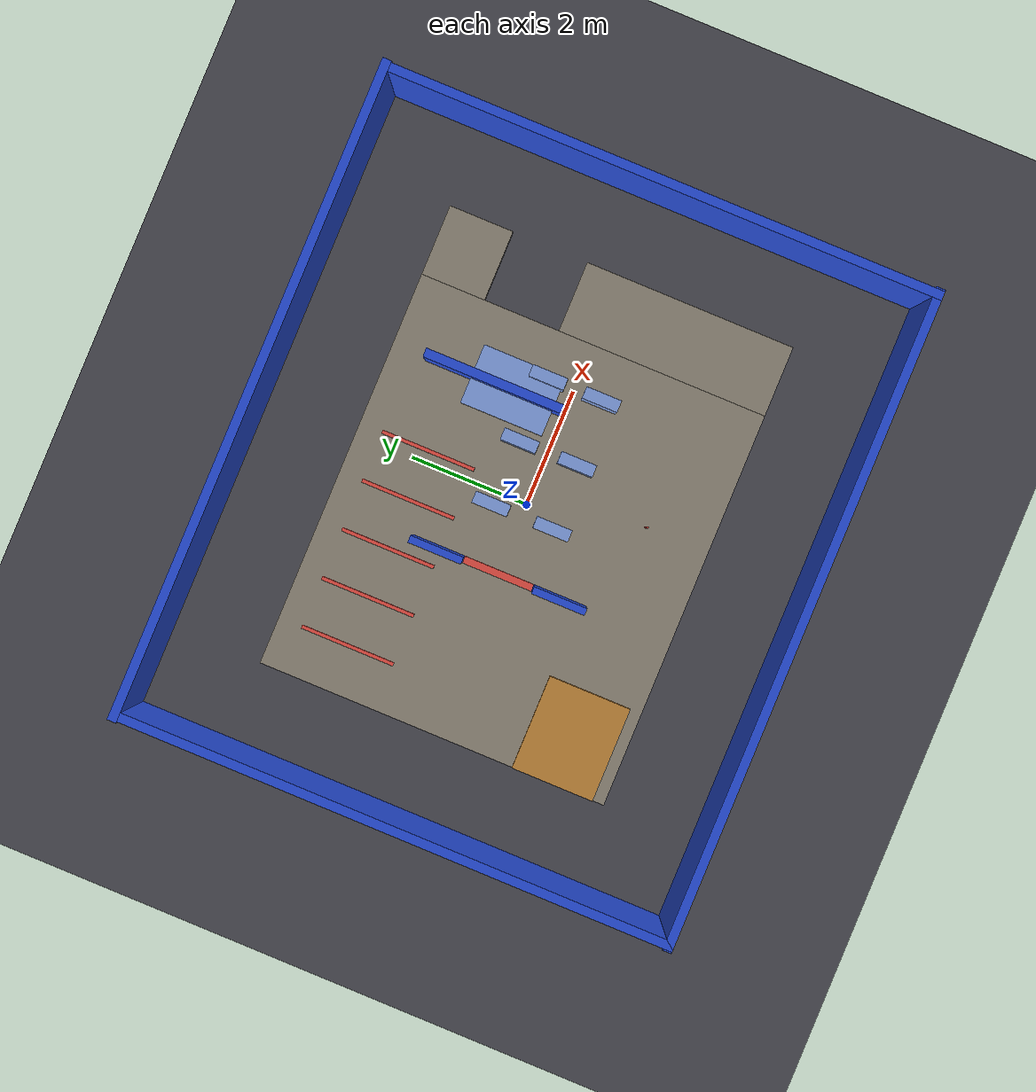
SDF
<?xml version="1.0"?>
<sdf version="1.9">
  <world name="proving_ground">
    <physics name="1ms" type="ignored">
      <max_step_size>0.001</max_step_size>
      <real_time_factor>1.0</real_time_factor>
    </physics>
    <plugin filename="gz-sim-physics-system" name="gz::sim::systems::Physics"/>
    <plugin filename="gz-sim-user-commands-system" name="gz::sim::systems::UserCommands"/>
    <plugin filename="gz-sim-scene-broadcaster-system" name="gz::sim::systems::SceneBroadcaster"/>
    <plugin filename="gz-sim-sensors-system" name="gz::sim::systems::Sensors">
      <render_engine>ogre2</render_engine>
    </plugin>
    <plugin filename="gz-sim-imu-system" name="gz::sim::systems::Imu"/>

    <light type="directional" name="sun">
      <cast_shadows>true</cast_shadows>
      <pose>0 0 10 0 0 0</pose>
      <diffuse>0.85 0.85 0.85 1</diffuse>
      <specular>0.2 0.2 0.2 1</specular>
      <direction>-0.5 0.1 -0.9</direction>
    </light>

    <model name="ground_plane">
      <static>true</static>
      <link name="link">
        <collision name="collision">
          <geometry><plane><normal>0 0 1</normal><size>100 100</size></plane></geometry>
        </collision>
        <visual name="visual">
          <geometry><plane><normal>0 0 1</normal><size>100 100</size></plane></geometry>
          <material><ambient>0.18 0.18 0.20 1</ambient><diffuse>0.28 0.28 0.31 1</diffuse></material>
        </visual>
      </link>
    </model>

    <model name="deck_main">
      <static>true</static><pose>-0.6000 0.0000 0.0600 0.000000 0.000000 0.000000</pose>
      <link name="link">
        <collision name="collision">
          <geometry><box><size>6.8000 6.0000 0.1200</size></box></geometry>
        </collision>
        <visual name="visual">
          <geometry><box><size>6.8000 6.0000 0.1200</size></box></geometry>
          <material><ambient>0.32 0.30 0.26 1</ambient><diffuse>0.55 0.52 0.46 1</diffuse>
            <specular>0.2 0.2 0.25 1</specular></material>
        </visual>
      </link>
    </model>
    <model name="deck_east_south">
      <static>true</static><pose>3.4000 -1.2000 0.0600 0.000000 0.000000 0.000000</pose>
      <link name="link">
        <collision name="collision">
          <geometry><box><size>1.2000 3.6000 0.1200</size></box></geometry>
        </collision>
        <visual name="visual">
          <geometry><box><size>1.2000 3.6000 0.1200</size></box></geometry>
          <material><ambient>0.32 0.30 0.26 1</ambient><diffuse>0.55 0.52 0.46 1</diffuse>
            <specular>0.2 0.2 0.25 1</specular></material>
        </visual>
      </link>
    </model>
    <model name="deck_east_north">
      <static>true</static><pose>3.4000 2.4500 0.0600 0.000000 0.000000 0.000000</pose>
      <link name="link">
        <collision name="collision">
          <geometry><box><size>1.2000 1.1000 0.1200</size></box></geometry>
        </collision>
        <visual name="visual">
          <geometry><box><size>1.2000 1.1000 0.1200</size></box></geometry>
          <material><ambient>0.32 0.30 0.26 1</ambient><diffuse>0.55 0.52 0.46 1</diffuse>
            <specular>0.2 0.2 0.25 1</specular></material>
        </visual>
      </link>
    </model>
    <model name="ledge_lane_wall">
      <static>true</static><pose>1.6000 1.2000 0.4200 0.000000 0.000000 0.000000</pose>
      <link name="link">
        <collision name="collision">
          <geometry><box><size>0.1500 2.4000 0.6000</size></box></geometry>
        </collision>
        <visual name="visual">
          <geometry><box><size>0.1500 2.4000 0.6000</size></box></geometry>
          <material><ambient>0.10 0.20 0.65 1</ambient><diffuse>0.15 0.30 0.85 1</diffuse>
            <specular>0.2 0.2 0.25 1</specular></material>
        </visual>
      </link>
    </model>
    <model name="bar_15mm">
      <static>true</static><pose>-3.2000 1.8000 0.1275 0.000000 0.000000 0.000000</pose>
      <link name="link">
        <collision name="collision">
          <geometry><box><size>0.0600 1.6000 0.0150</size></box></geometry>
        </collision>
        <visual name="visual">
          <geometry><box><size>0.0600 1.6000 0.0150</size></box></geometry>
          <material><ambient>0.62 0.18 0.16 1</ambient><diffuse>0.90 0.30 0.26 1</diffuse>
            <specular>0.2 0.2 0.25 1</specular></material>
        </visual>
      </link>
    </model>
    <model name="bar_30mm">
      <static>true</static><pose>-2.3500 1.8000 0.1350 0.000000 0.000000 0.000000</pose>
      <link name="link">
        <collision name="collision">
          <geometry><box><size>0.0600 1.6000 0.0300</size></box></geometry>
        </collision>
        <visual name="visual">
          <geometry><box><size>0.0600 1.6000 0.0300</size></box></geometry>
          <material><ambient>0.62 0.18 0.16 1</ambient><diffuse>0.90 0.30 0.26 1</diffuse>
            <specular>0.2 0.2 0.25 1</specular></material>
        </visual>
      </link>
    </model>
    <model name="bar_45mm">
      <static>true</static><pose>-1.5000 1.8000 0.1425 0.000000 0.000000 0.000000</pose>
      <link name="link">
        <collision name="collision">
          <geometry><box><size>0.0600 1.6000 0.0450</size></box></geometry>
        </collision>
        <visual name="visual">
          <geometry><box><size>0.0600 1.6000 0.0450</size></box></geometry>
          <material><ambient>0.62 0.18 0.16 1</ambient><diffuse>0.90 0.30 0.26 1</diffuse>
            <specular>0.2 0.2 0.25 1</specular></material>
        </visual>
      </link>
    </model>
    <model name="bar_60mm">
      <static>true</static><pose>-0.6500 1.8000 0.1500 0.000000 0.000000 0.000000</pose>
      <link name="link">
        <collision name="collision">
          <geometry><box><size>0.0600 1.6000 0.0600</size></box></geometry>
        </collision>
        <visual name="visual">
          <geometry><box><size>0.0600 1.6000 0.0600</size></box></geometry>
          <material><ambient>0.62 0.18 0.16 1</ambient><diffuse>0.90 0.30 0.26 1</diffuse>
            <specular>0.2 0.2 0.25 1</specular></material>
        </visual>
      </link>
    </model>
    <model name="bar_90mm">
      <static>true</static><pose>0.2000 1.8000 0.1650 0.000000 0.000000 0.000000</pose>
      <link name="link">
        <collision name="collision">
          <geometry><box><size>0.0600 1.6000 0.0900</size></box></geometry>
        </collision>
        <visual name="visual">
          <geometry><box><size>0.0600 1.6000 0.0900</size></box></geometry>
          <material><ambient>0.62 0.18 0.16 1</ambient><diffuse>0.90 0.30 0.26 1</diffuse>
            <specular>0.2 0.2 0.25 1</specular></material>
        </visual>
      </link>
    </model>
    <model name="doorway_left">
      <static>true</static><pose>-1.2000 1.0500 0.4200 0.000000 0.000000 0.000000</pose>
      <link name="link">
        <collision name="collision">
          <geometry><box><size>0.1200 0.9000 0.6000</size></box></geometry>
        </collision>
        <visual name="visual">
          <geometry><box><size>0.1200 0.9000 0.6000</size></box></geometry>
          <material><ambient>0.10 0.20 0.65 1</ambient><diffuse>0.15 0.30 0.85 1</diffuse>
            <specular>0.2 0.2 0.25 1</specular></material>
        </visual>
      </link>
    </model>
    <model name="doorway_right">
      <static>true</static><pose>-1.2000 -1.0500 0.4200 0.000000 0.000000 0.000000</pose>
      <link name="link">
        <collision name="collision">
          <geometry><box><size>0.1200 0.9000 0.6000</size></box></geometry>
        </collision>
        <visual name="visual">
          <geometry><box><size>0.1200 0.9000 0.6000</size></box></geometry>
          <material><ambient>0.10 0.20 0.65 1</ambient><diffuse>0.15 0.30 0.85 1</diffuse>
            <specular>0.2 0.2 0.25 1</specular></material>
        </visual>
      </link>
    </model>
    <model name="doorsill">
      <static>true</static><pose>-1.2000 0.0000 0.1400 0.000000 0.000000 0.000000</pose>
      <link name="link">
        <collision name="collision">
          <geometry><box><size>0.1200 1.2000 0.0400</size></box></geometry>
        </collision>
        <visual name="visual">
          <geometry><box><size>0.1200 1.2000 0.0400</size></box></geometry>
          <material><ambient>0.62 0.18 0.16 1</ambient><diffuse>0.90 0.30 0.26 1</diffuse>
            <specular>0.2 0.2 0.25 1</specular></material>
        </visual>
      </link>
    </model>
    <model name="thin_pole">
      <static>true</static><pose>0.4000 -1.9000 0.3700 0 0 0</pose>
      <link name="link">
        <collision name="collision">
          <geometry><cylinder><radius>0.0150</radius><length>0.5000</length></cylinder></geometry>
        </collision>
        <visual name="visual">
          <geometry><cylinder><radius>0.0150</radius><length>0.5000</length></cylinder></geometry>
          <material><ambient>0.62 0.18 0.16 1</ambient><diffuse>0.90 0.30 0.26 1</diffuse>
            <specular>0.2 0.2 0.25 1</specular></material>
        </visual>
      </link>
    </model>
    <model name="overhang_top">
      <static>true</static><pose>1.6000 0.9000 0.4350 0.000000 0.000000 0.000000</pose>
      <link name="link">
        <collision name="collision">
          <geometry><box><size>1.0000 1.4000 0.0300</size></box></geometry>
        </collision>
        <visual name="visual">
          <geometry><box><size>1.0000 1.4000 0.0300</size></box></geometry>
          <material><ambient>0.30 0.40 0.62 1</ambient><diffuse>0.50 0.62 0.88 1</diffuse>
            <specular>0.2 0.2 0.25 1</specular></material>
        </visual>
      </link>
    </model>
    <model name="overhang_leg_s">
      <static>true</static><pose>1.6000 0.2400 0.2700 0.000000 0.000000 0.000000</pose>
      <link name="link">
        <collision name="collision">
          <geometry><box><size>0.0600 0.0600 0.3000</size></box></geometry>
        </collision>
        <visual name="visual">
          <geometry><box><size>0.0600 0.0600 0.3000</size></box></geometry>
          <material><ambient>0.30 0.40 0.62 1</ambient><diffuse>0.50 0.62 0.88 1</diffuse>
            <specular>0.2 0.2 0.25 1</specular></material>
        </visual>
      </link>
    </model>
    <model name="overhang_leg_n">
      <static>true</static><pose>1.6000 1.5600 0.2700 0.000000 0.000000 0.000000</pose>
      <link name="link">
        <collision name="collision">
          <geometry><box><size>0.0600 0.0600 0.3000</size></box></geometry>
        </collision>
        <visual name="visual">
          <geometry><box><size>0.0600 0.0600 0.3000</size></box></geometry>
          <material><ambient>0.30 0.40 0.62 1</ambient><diffuse>0.50 0.62 0.88 1</diffuse>
            <specular>0.2 0.2 0.25 1</specular></material>
        </visual>
      </link>
    </model>
    <model name="gap_45_b">
      <static>true</static><pose>-0.2000 -0.5250 0.3200 0.000000 0.000000 0.000000</pose>
      <link name="link">
        <collision name="collision">
          <geometry><box><size>0.2000 0.6000 0.4000</size></box></geometry>
        </collision>
        <visual name="visual">
          <geometry><box><size>0.2000 0.6000 0.4000</size></box></geometry>
          <material><ambient>0.30 0.40 0.62 1</ambient><diffuse>0.50 0.62 0.88 1</diffuse>
            <specular>0.2 0.2 0.25 1</specular></material>
        </visual>
      </link>
    </model>
    <model name="gap_45_a">
      <static>true</static><pose>-0.2000 0.5250 0.3200 0.000000 0.000000 0.000000</pose>
      <link name="link">
        <collision name="collision">
          <geometry><box><size>0.2000 0.6000 0.4000</size></box></geometry>
        </collision>
        <visual name="visual">
          <geometry><box><size>0.2000 0.6000 0.4000</size></box></geometry>
          <material><ambient>0.30 0.40 0.62 1</ambient><diffuse>0.50 0.62 0.88 1</diffuse>
            <specular>0.2 0.2 0.25 1</specular></material>
        </visual>
      </link>
    </model>
    <model name="gap_38_b">
      <static>true</static><pose>0.9000 -0.4900 0.3200 0.000000 0.000000 0.000000</pose>
      <link name="link">
        <collision name="collision">
          <geometry><box><size>0.2000 0.6000 0.4000</size></box></geometry>
        </collision>
        <visual name="visual">
          <geometry><box><size>0.2000 0.6000 0.4000</size></box></geometry>
          <material><ambient>0.30 0.40 0.62 1</ambient><diffuse>0.50 0.62 0.88 1</diffuse>
            <specular>0.2 0.2 0.25 1</specular></material>
        </visual>
      </link>
    </model>
    <model name="gap_38_a">
      <static>true</static><pose>0.9000 0.4900 0.3200 0.000000 0.000000 0.000000</pose>
      <link name="link">
        <collision name="collision">
          <geometry><box><size>0.2000 0.6000 0.4000</size></box></geometry>
        </collision>
        <visual name="visual">
          <geometry><box><size>0.2000 0.6000 0.4000</size></box></geometry>
          <material><ambient>0.30 0.40 0.62 1</ambient><diffuse>0.50 0.62 0.88 1</diffuse>
            <specular>0.2 0.2 0.25 1</specular></material>
        </visual>
      </link>
    </model>
    <model name="gap_32_b">
      <static>true</static><pose>2.0000 -0.4600 0.3200 0.000000 0.000000 0.000000</pose>
      <link name="link">
        <collision name="collision">
          <geometry><box><size>0.2000 0.6000 0.4000</size></box></geometry>
        </collision>
        <visual name="visual">
          <geometry><box><size>0.2000 0.6000 0.4000</size></box></geometry>
          <material><ambient>0.30 0.40 0.62 1</ambient><diffuse>0.50 0.62 0.88 1</diffuse>
            <specular>0.2 0.2 0.25 1</specular></material>
        </visual>
      </link>
    </model>
    <model name="gap_32_a">
      <static>true</static><pose>2.0000 0.4600 0.3200 0.000000 0.000000 0.000000</pose>
      <link name="link">
        <collision name="collision">
          <geometry><box><size>0.2000 0.6000 0.4000</size></box></geometry>
        </collision>
        <visual name="visual">
          <geometry><box><size>0.2000 0.6000 0.4000</size></box></geometry>
          <material><ambient>0.30 0.40 0.62 1</ambient><diffuse>0.50 0.62 0.88 1</diffuse>
            <specular>0.2 0.2 0.25 1</specular></material>
        </visual>
      </link>
    </model>
    <model name="mezzanine">
      <static>true</static><pose>-3.2000 -2.1000 0.1500 0.000000 0.000000 0.000000</pose>
      <link name="link">
        <collision name="collision">
          <geometry><box><size>1.6000 1.4000 0.0600</size></box></geometry>
        </collision>
        <visual name="visual">
          <geometry><box><size>1.6000 1.4000 0.0600</size></box></geometry>
          <material><ambient>0.45 0.30 0.12 1</ambient><diffuse>0.75 0.52 0.22 1</diffuse>
            <specular>0.2 0.2 0.25 1</specular></material>
        </visual>
      </link>
    </model>
    <model name="wall_north">
      <static>true</static><pose>0.0000 4.6000 0.6000 0.000000 0.000000 0.000000</pose>
      <link name="link">
        <collision name="collision">
          <geometry><box><size>11.0000 0.1500 1.2000</size></box></geometry>
        </collision>
        <visual name="visual">
          <geometry><box><size>11.0000 0.1500 1.2000</size></box></geometry>
          <material><ambient>0.10 0.20 0.65 1</ambient><diffuse>0.15 0.30 0.85 1</diffuse>
            <specular>0.2 0.2 0.25 1</specular></material>
        </visual>
      </link>
    </model>
    <model name="wall_south">
      <static>true</static><pose>0.0000 -4.6000 0.6000 0.000000 0.000000 0.000000</pose>
      <link name="link">
        <collision name="collision">
          <geometry><box><size>11.0000 0.1500 1.2000</size></box></geometry>
        </collision>
        <visual name="visual">
          <geometry><box><size>11.0000 0.1500 1.2000</size></box></geometry>
          <material><ambient>0.10 0.20 0.65 1</ambient><diffuse>0.15 0.30 0.85 1</diffuse>
            <specular>0.2 0.2 0.25 1</specular></material>
        </visual>
      </link>
    </model>
    <model name="wall_east">
      <static>true</static><pose>5.4000 0.0000 0.6000 0.000000 0.000000 0.000000</pose>
      <link name="link">
        <collision name="collision">
          <geometry><box><size>0.1500 9.3500 1.2000</size></box></geometry>
        </collision>
        <visual name="visual">
          <geometry><box><size>0.1500 9.3500 1.2000</size></box></geometry>
          <material><ambient>0.10 0.20 0.65 1</ambient><diffuse>0.15 0.30 0.85 1</diffuse>
            <specular>0.2 0.2 0.25 1</specular></material>
        </visual>
      </link>
    </model>
    <model name="wall_west">
      <static>true</static><pose>-5.4000 0.0000 0.6000 0.000000 0.000000 0.000000</pose>
      <link name="link">
        <collision name="collision">
          <geometry><box><size>0.1500 9.3500 1.2000</size></box></geometry>
        </collision>
        <visual name="visual">
          <geometry><box><size>0.1500 9.3500 1.2000</size></box></geometry>
          <material><ambient>0.10 0.20 0.65 1</ambient><diffuse>0.15 0.30 0.85 1</diffuse>
            <specular>0.2 0.2 0.25 1</specular></material>
        </visual>
      </link>
    </model>
  </world>
</sdf>
